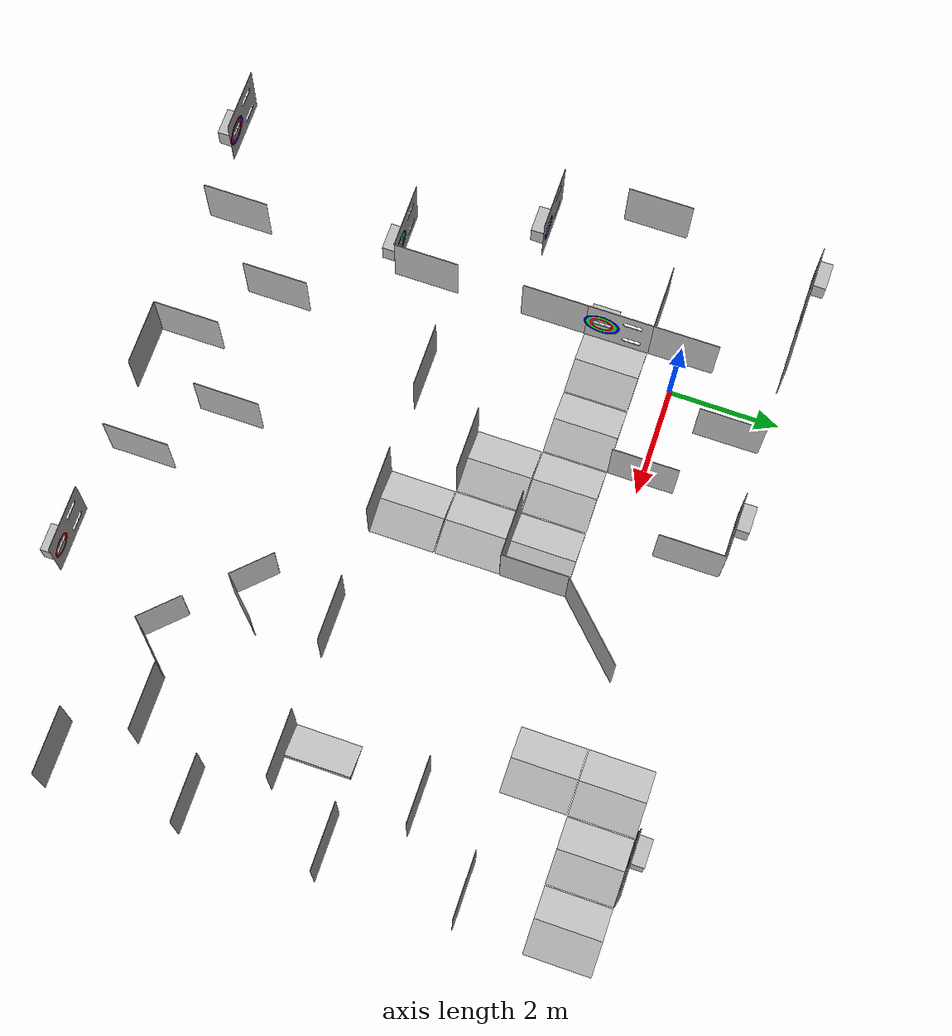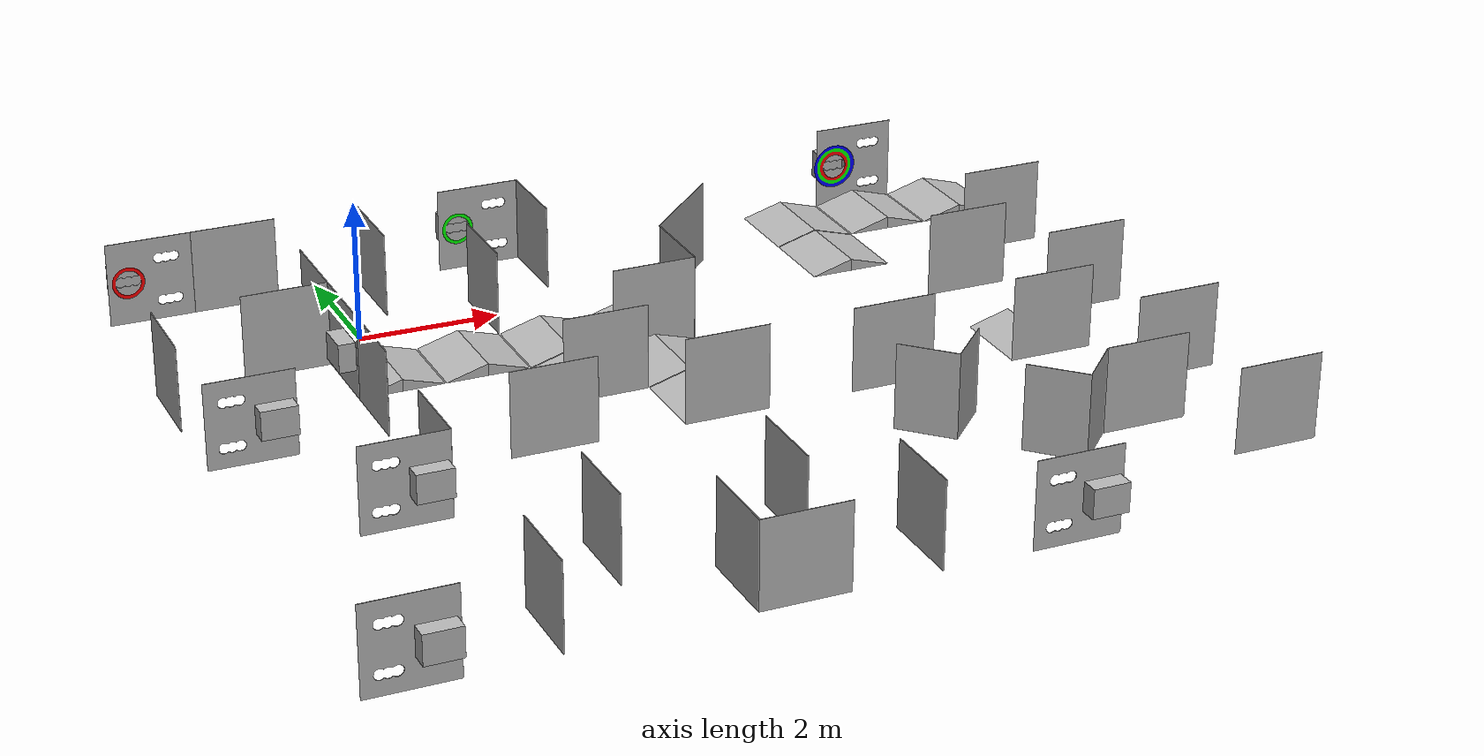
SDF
<sdf version="1.4">
 <world name="default">
  <include><uri>model://sun</uri></include>
  <model name="small_wall_58">
   <static>true</static>
   <link name="small_wall_58_link">
    <pose>9.6 -3.6 0 0 0 0</pose>
    <collision name="small_wall_58_collision">
     <geometry><mesh><uri>file://robocup/walls/small_wall.dae</uri><scale>1 1 1</scale></mesh></geometry>
    </collision>
    <visual name="small_wall_58_visual">
     <cast_shadows>false</cast_shadows>
     <geometry><mesh><uri>file://robocup/walls/small_wall.dae</uri><scale>1 1 1</scale></mesh></geometry>
    </visual>
   </link>
  </model>
  <model name="small_wall_59">
   <static>true</static>
   <link name="small_wall_59_link">
    <pose>8.4 -1.2 0 0 0 -3.14159</pose>
    <collision name="small_wall_59_collision">
     <geometry><mesh><uri>file://robocup/walls/small_wall.dae</uri><scale>1 1 1</scale></mesh></geometry>
    </collision>
    <visual name="small_wall_59_visual">
     <cast_shadows>false</cast_shadows>
     <geometry><mesh><uri>file://robocup/walls/small_wall.dae</uri><scale>1 1 1</scale></mesh></geometry>
    </visual>
   </link>
  </model>
  <model name="small_wall_60">
   <static>true</static>
   <link name="small_wall_60_link">
    <pose>9.6 -1.2 0 0 0 0</pose>
    <collision name="small_wall_60_collision">
     <geometry><mesh><uri>file://robocup/walls/small_wall.dae</uri><scale>1 1 1</scale></mesh></geometry>
    </collision>
    <visual name="small_wall_60_visual">
     <cast_shadows>false</cast_shadows>
     <geometry><mesh><uri>file://robocup/walls/small_wall.dae</uri><scale>1 1 1</scale></mesh></geometry>
    </visual>
   </link>
  </model>
  <model name="half_ramp_14">
   <static>true</static>
   <link name="half_ramp_14_link">
    <pose>8.4 -3.6 0 0 0 -1.5708</pose>
    <collision name="half_ramp_14_collision">
     <geometry><mesh><uri>file://robocup/ramps/half_ramp.dae</uri><scale>1 1 1</scale></mesh></geometry>
    </collision>
    <visual name="half_ramp_14_visual">
     <cast_shadows>false</cast_shadows>
     <geometry><mesh><uri>file://robocup/ramps/half_ramp.dae</uri><scale>1 1 1</scale></mesh></geometry>
    </visual>
   </link>
  </model>
  <model name="small_wall_61">
   <static>true</static>
   <link name="small_wall_61_link">
    <pose>8.4 -4.8 0 0 0 0</pose>
    <collision name="small_wall_61_collision">
     <geometry><mesh><uri>file://robocup/walls/small_wall.dae</uri><scale>1 1 1</scale></mesh></geometry>
    </collision>
    <visual name="small_wall_61_visual">
     <cast_shadows>false</cast_shadows>
     <geometry><mesh><uri>file://robocup/walls/small_wall.dae</uri><scale>1 1 1</scale></mesh></geometry>
    </visual>
   </link>
  </model>
  <model name="small_wall_62">
   <static>true</static>
   <link name="small_wall_62_link">
    <pose>9.6 -4.8 0 0 0 -3.14159</pose>
    <collision name="small_wall_62_collision">
     <geometry><mesh><uri>file://robocup/walls/small_wall.dae</uri><scale>1 1 1</scale></mesh></geometry>
    </collision>
    <visual name="small_wall_62_visual">
     <cast_shadows>false</cast_shadows>
     <geometry><mesh><uri>file://robocup/walls/small_wall.dae</uri><scale>1 1 1</scale></mesh></geometry>
    </visual>
   </link>
  </model>
  <model name="small_wall_63">
   <static>true</static>
   <link name="small_wall_63_link">
    <pose>9.6 -8.4 0 0 0 0</pose>
    <collision name="small_wall_63_collision">
     <geometry><mesh><uri>file://robocup/walls/small_wall.dae</uri><scale>1 1 1</scale></mesh></geometry>
    </collision>
    <visual name="small_wall_63_visual">
     <cast_shadows>false</cast_shadows>
     <geometry><mesh><uri>file://robocup/walls/small_wall.dae</uri><scale>1 1 1</scale></mesh></geometry>
    </visual>
   </link>
  </model>
  <model name="small_wall_triple_holes_1">
   <static>true</static>
   <link name="small_wall_triple_holes_1_link">
    <pose>-2.4 -3.6 0 0 0 0</pose>
    <collision name="small_wall_triple_holes_1_collision">
     <geometry>
      <mesh><uri>file://robocup/walls/small_wall_triple_holes.dae</uri><scale>1 1 1</scale></mesh>
     </geometry>
    </collision>
    <visual name="small_wall_triple_holes_1_visual">
     <cast_shadows>false</cast_shadows>
     <geometry>
      <mesh><uri>file://robocup/walls/small_wall_triple_holes.dae</uri><scale>1 1 1</scale></mesh>
     </geometry>
    </visual>
   </link>
  </model>
  <model name="wall_diag_120_1">
   <static>true</static>
   <link name="wall_diag_120_1_link">
    <pose>4.8 0 0 0 0 0</pose>
    <collision name="wall_diag_120_1_collision">
     <geometry><mesh><uri>file://robocup/walls/wall_diag_120.dae</uri><scale>1 1 1</scale></mesh></geometry>
    </collision>
    <visual name="wall_diag_120_1_visual">
     <cast_shadows>false</cast_shadows>
     <geometry><mesh><uri>file://robocup/walls/wall_diag_120.dae</uri><scale>1 1 1</scale></mesh></geometry>
    </visual>
   </link>
  </model>
  <model name="corner_diag_120_1">
   <static>true</static>
   <link name="corner_diag_120_1_link">
    <pose>6 -6 0 0 0 0</pose>
    <collision name="corner_diag_120_1_collision">
     <geometry><mesh><uri>file://robocup/walls/corner_diag_120.dae</uri><scale>1 1 1</scale></mesh></geometry>
    </collision>
    <visual name="corner_diag_120_1_visual">
     <cast_shadows>false</cast_shadows>
     <geometry><mesh><uri>file://robocup/walls/corner_diag_120.dae</uri><scale>1 1 1</scale></mesh></geometry>
    </visual>
   </link>
  </model>
  <model name="corner_diag_120_2">
   <static>true</static>
   <link name="corner_diag_120_2_link">
    <pose>7.2 -7.2 0 0 0 0</pose>
    <collision name="corner_diag_120_2_collision">
     <geometry><mesh><uri>file://robocup/walls/corner_diag_120.dae</uri><scale>1 1 1</scale></mesh></geometry>
    </collision>
    <visual name="corner_diag_120_2_visual">
     <cast_shadows>false</cast_shadows>
     <geometry><mesh><uri>file://robocup/walls/corner_diag_120.dae</uri><scale>1 1 1</scale></mesh></geometry>
    </visual>
   </link>
  </model>
  <model name="small_wall_triple_holes_2">
   <static>true</static>
   <link name="small_wall_triple_holes_2_link">
    <pose>-2.4 2.4 0 0 0 -3.14159</pose>
    <collision name="small_wall_triple_holes_2_collision">
     <geometry>
      <mesh><uri>file://robocup/walls/small_wall_triple_holes.dae</uri><scale>1 1 1</scale></mesh>
     </geometry>
    </collision>
    <visual name="small_wall_triple_holes_2_visual">
     <cast_shadows>false</cast_shadows>
     <geometry>
      <mesh><uri>file://robocup/walls/small_wall_triple_holes.dae</uri><scale>1 1 1</scale></mesh>
     </geometry>
    </visual>
   </link>
  </model>
  <model name="small_wall_triple_holes_3">
   <static>true</static>
   <link name="small_wall_triple_holes_3_link">
    <pose>8.4 2.4 0 0 0 -3.14159</pose>
    <collision name="small_wall_triple_holes_3_collision">
     <geometry>
      <mesh><uri>file://robocup/walls/small_wall_triple_holes.dae</uri><scale>1 1 1</scale></mesh>
     </geometry>
    </collision>
    <visual name="small_wall_triple_holes_3_visual">
     <cast_shadows>false</cast_shadows>
     <geometry>
      <mesh><uri>file://robocup/walls/small_wall_triple_holes.dae</uri><scale>1 1 1</scale></mesh>
     </geometry>
    </visual>
   </link>
  </model>
  <model name="half_ramp_15">
   <static>true</static>
   <link name="half_ramp_15_link">
    <pose>9.6 1.2 0 0 0 -4.71239</pose>
    <collision name="half_ramp_15_collision">
     <geometry><mesh><uri>file://robocup/ramps/half_ramp.dae</uri><scale>1 1 1</scale></mesh></geometry>
    </collision>
    <visual name="half_ramp_15_visual">
     <cast_shadows>false</cast_shadows>
     <geometry><mesh><uri>file://robocup/ramps/half_ramp.dae</uri><scale>1 1 1</scale></mesh></geometry>
    </visual>
   </link>
  </model>
  <model name="half_ramp_16">
   <static>true</static>
   <link name="half_ramp_16_link">
    <pose>9.6 1.2 0 0 0 -1.5708</pose>
    <collision name="half_ramp_16_collision">
     <geometry><mesh><uri>file://robocup/ramps/half_ramp.dae</uri><scale>1 1 1</scale></mesh></geometry>
    </collision>
    <visual name="half_ramp_16_visual">
     <cast_shadows>false</cast_shadows>
     <geometry><mesh><uri>file://robocup/ramps/half_ramp.dae</uri><scale>1 1 1</scale></mesh></geometry>
    </visual>
   </link>
  </model>
  <model name="half_ramp_17">
   <static>true</static>
   <link name="half_ramp_17_link">
    <pose>7.2 1.2 0 0 0 -1.5708</pose>
    <collision name="half_ramp_17_collision">
     <geometry><mesh><uri>file://robocup/ramps/half_ramp.dae</uri><scale>1 1 1</scale></mesh></geometry>
    </collision>
    <visual name="half_ramp_17_visual">
     <cast_shadows>false</cast_shadows>
     <geometry><mesh><uri>file://robocup/ramps/half_ramp.dae</uri><scale>1 1 1</scale></mesh></geometry>
    </visual>
   </link>
  </model>
  <model name="half_ramp_18">
   <static>true</static>
   <link name="half_ramp_18_link">
    <pose>7.2 1.2 0 0 0 -4.71239</pose>
    <collision name="half_ramp_18_collision">
     <geometry><mesh><uri>file://robocup/ramps/half_ramp.dae</uri><scale>1 1 1</scale></mesh></geometry>
    </collision>
    <visual name="half_ramp_18_visual">
     <cast_shadows>false</cast_shadows>
     <geometry><mesh><uri>file://robocup/ramps/half_ramp.dae</uri><scale>1 1 1</scale></mesh></geometry>
    </visual>
   </link>
  </model>
  <model name="half_ramp_19">
   <static>true</static>
   <link name="half_ramp_19_link">
    <pose>8.4 1.2 0 0 0 -1.5708</pose>
    <collision name="half_ramp_19_collision">
     <geometry><mesh><uri>file://robocup/ramps/half_ramp.dae</uri><scale>1 1 1</scale></mesh></geometry>
    </collision>
    <visual name="half_ramp_19_visual">
     <cast_shadows>false</cast_shadows>
     <geometry><mesh><uri>file://robocup/ramps/half_ramp.dae</uri><scale>1 1 1</scale></mesh></geometry>
    </visual>
   </link>
  </model>
  <model name="half_ramp_20">
   <static>true</static>
   <link name="half_ramp_20_link">
    <pose>8.4 1.2 0 0 0 -4.71239</pose>
    <collision name="half_ramp_20_collision">
     <geometry><mesh><uri>file://robocup/ramps/half_ramp.dae</uri><scale>1 1 1</scale></mesh></geometry>
    </collision>
    <visual name="half_ramp_20_visual">
     <cast_shadows>false</cast_shadows>
     <geometry><mesh><uri>file://robocup/ramps/half_ramp.dae</uri><scale>1 1 1</scale></mesh></geometry>
    </visual>
   </link>
  </model>
  <model name="half_ramp_21">
   <static>true</static>
   <link name="half_ramp_21_link">
    <pose>7.2 0 0 0 0 -4.71239</pose>
    <collision name="half_ramp_21_collision">
     <geometry><mesh><uri>file://robocup/ramps/half_ramp.dae</uri><scale>1 1 1</scale></mesh></geometry>
    </collision>
    <visual name="half_ramp_21_visual">
     <cast_shadows>false</cast_shadows>
     <geometry><mesh><uri>file://robocup/ramps/half_ramp.dae</uri><scale>1 1 1</scale></mesh></geometry>
    </visual>
   </link>
  </model>
  <model name="half_ramp_22">
   <static>true</static>
   <link name="half_ramp_22_link">
    <pose>7.2 0 0 0 0 -1.5708</pose>
    <collision name="half_ramp_22_collision">
     <geometry><mesh><uri>file://robocup/ramps/half_ramp.dae</uri><scale>1 1 1</scale></mesh></geometry>
    </collision>
    <visual name="half_ramp_22_visual">
     <cast_shadows>false</cast_shadows>
     <geometry><mesh><uri>file://robocup/ramps/half_ramp.dae</uri><scale>1 1 1</scale></mesh></geometry>
    </visual>
   </link>
  </model>
  <model name="half_ramp_23">
   <static>true</static>
   <link name="half_ramp_23_link">
    <pose>0 -1.2 0 0 0 -1.5708</pose>
    <collision name="half_ramp_23_collision">
     <geometry><mesh><uri>file://robocup/ramps/half_ramp.dae</uri><scale>1 1 1</scale></mesh></geometry>
    </collision>
    <visual name="half_ramp_23_visual">
     <cast_shadows>false</cast_shadows>
     <geometry><mesh><uri>file://robocup/ramps/half_ramp.dae</uri><scale>1 1 1</scale></mesh></geometry>
    </visual>
   </link>
  </model>
  <model name="half_ramp_24">
   <static>true</static>
   <link name="half_ramp_24_link">
    <pose>0 -1.2 0 0 0 -4.71239</pose>
    <collision name="half_ramp_24_collision">
     <geometry><mesh><uri>file://robocup/ramps/half_ramp.dae</uri><scale>1 1 1</scale></mesh></geometry>
    </collision>
    <visual name="half_ramp_24_visual">
     <cast_shadows>false</cast_shadows>
     <geometry><mesh><uri>file://robocup/ramps/half_ramp.dae</uri><scale>1 1 1</scale></mesh></geometry>
    </visual>
   </link>
  </model>
  <model name="half_ramp_25">
   <static>true</static>
   <link name="half_ramp_25_link">
    <pose>1.2 -1.2 0 0 0 -4.71239</pose>
    <collision name="half_ramp_25_collision">
     <geometry><mesh><uri>file://robocup/ramps/half_ramp.dae</uri><scale>1 1 1</scale></mesh></geometry>
    </collision>
    <visual name="half_ramp_25_visual">
     <cast_shadows>false</cast_shadows>
     <geometry><mesh><uri>file://robocup/ramps/half_ramp.dae</uri><scale>1 1 1</scale></mesh></geometry>
    </visual>
   </link>
  </model>
  <model name="half_ramp_26">
   <static>true</static>
   <link name="half_ramp_26_link">
    <pose>1.2 -1.2 0 0 0 -1.5708</pose>
    <collision name="half_ramp_26_collision">
     <geometry><mesh><uri>file://robocup/ramps/half_ramp.dae</uri><scale>1 1 1</scale></mesh></geometry>
    </collision>
    <visual name="half_ramp_26_visual">
     <cast_shadows>false</cast_shadows>
     <geometry><mesh><uri>file://robocup/ramps/half_ramp.dae</uri><scale>1 1 1</scale></mesh></geometry>
    </visual>
   </link>
  </model>
  <model name="small_wall_64">
   <static>true</static>
   <link name="small_wall_64_link">
    <pose>3.6 -2.4 0 0 0 0</pose>
    <collision name="small_wall_64_collision">
     <geometry><mesh><uri>file://robocup/walls/small_wall.dae</uri><scale>1 1 1</scale></mesh></geometry>
    </collision>
    <visual name="small_wall_64_visual">
     <cast_shadows>false</cast_shadows>
     <geometry><mesh><uri>file://robocup/walls/small_wall.dae</uri><scale>1 1 1</scale></mesh></geometry>
    </visual>
   </link>
  </model>
  <model name="small_wall_65">
   <static>true</static>
   <link name="small_wall_65_link">
    <pose>2.4 -3.6 0 0 0 0</pose>
    <collision name="small_wall_65_collision">
     <geometry><mesh><uri>file://robocup/walls/small_wall.dae</uri><scale>1 1 1</scale></mesh></geometry>
    </collision>
    <visual name="small_wall_65_visual">
     <cast_shadows>false</cast_shadows>
     <geometry><mesh><uri>file://robocup/walls/small_wall.dae</uri><scale>1 1 1</scale></mesh></geometry>
    </visual>
   </link>
  </model>
  <model name="small_wall_66">
   <static>true</static>
   <link name="small_wall_66_link">
    <pose>3.6 -4.8 0 0 0 0</pose>
    <collision name="small_wall_66_collision">
     <geometry><mesh><uri>file://robocup/walls/small_wall.dae</uri><scale>1 1 1</scale></mesh></geometry>
    </collision>
    <visual name="small_wall_66_visual">
     <cast_shadows>false</cast_shadows>
     <geometry><mesh><uri>file://robocup/walls/small_wall.dae</uri><scale>1 1 1</scale></mesh></geometry>
    </visual>
   </link>
  </model>
  <model name="half_ramp_27">
   <static>true</static>
   <link name="half_ramp_27_link">
    <pose>2.4 -1.2 0 0 0 -1.5708</pose>
    <collision name="half_ramp_27_collision">
     <geometry><mesh><uri>file://robocup/ramps/half_ramp.dae</uri><scale>1 1 1</scale></mesh></geometry>
    </collision>
    <visual name="half_ramp_27_visual">
     <cast_shadows>false</cast_shadows>
     <geometry><mesh><uri>file://robocup/ramps/half_ramp.dae</uri><scale>1 1 1</scale></mesh></geometry>
    </visual>
   </link>
  </model>
  <model name="half_ramp_28">
   <static>true</static>
   <link name="half_ramp_28_link">
    <pose>2.4 -1.2 0 0 0 -4.71239</pose>
    <collision name="half_ramp_28_collision">
     <geometry><mesh><uri>file://robocup/ramps/half_ramp.dae</uri><scale>1 1 1</scale></mesh></geometry>
    </collision>
    <visual name="half_ramp_28_visual">
     <cast_shadows>false</cast_shadows>
     <geometry><mesh><uri>file://robocup/ramps/half_ramp.dae</uri><scale>1 1 1</scale></mesh></geometry>
    </visual>
   </link>
  </model>
  <model name="half_ramp_29">
   <static>true</static>
   <link name="half_ramp_29_link">
    <pose>3.6 -1.2 0 0 0 -1.5708</pose>
    <collision name="half_ramp_29_collision">
     <geometry><mesh><uri>file://robocup/ramps/half_ramp.dae</uri><scale>1 1 1</scale></mesh></geometry>
    </collision>
    <visual name="half_ramp_29_visual">
     <cast_shadows>false</cast_shadows>
     <geometry><mesh><uri>file://robocup/ramps/half_ramp.dae</uri><scale>1 1 1</scale></mesh></geometry>
    </visual>
   </link>
  </model>
  <model name="half_ramp_30">
   <static>true</static>
   <link name="half_ramp_30_link">
    <pose>3.6 -1.2 0 0 0 -4.71239</pose>
    <collision name="half_ramp_30_collision">
     <geometry><mesh><uri>file://robocup/ramps/half_ramp.dae</uri><scale>1 1 1</scale></mesh></geometry>
    </collision>
    <visual name="half_ramp_30_visual">
     <cast_shadows>false</cast_shadows>
     <geometry><mesh><uri>file://robocup/ramps/half_ramp.dae</uri><scale>1 1 1</scale></mesh></geometry>
    </visual>
   </link>
  </model>
  <model name="half_ramp_31">
   <static>true</static>
   <link name="half_ramp_31_link">
    <pose>2.4 -2.4 0 0 0 -4.71239</pose>
    <collision name="half_ramp_31_collision">
     <geometry><mesh><uri>file://robocup/ramps/half_ramp.dae</uri><scale>1 1 1</scale></mesh></geometry>
    </collision>
    <visual name="half_ramp_31_visual">
     <cast_shadows>false</cast_shadows>
     <geometry><mesh><uri>file://robocup/ramps/half_ramp.dae</uri><scale>1 1 1</scale></mesh></geometry>
    </visual>
   </link>
  </model>
  <model name="half_ramp_32">
   <static>true</static>
   <link name="half_ramp_32_link">
    <pose>2.4 -2.4 0 0 0 -1.5708</pose>
    <collision name="half_ramp_32_collision">
     <geometry><mesh><uri>file://robocup/ramps/half_ramp.dae</uri><scale>1 1 1</scale></mesh></geometry>
    </collision>
    <visual name="half_ramp_32_visual">
     <cast_shadows>false</cast_shadows>
     <geometry><mesh><uri>file://robocup/ramps/half_ramp.dae</uri><scale>1 1 1</scale></mesh></geometry>
    </visual>
   </link>
  </model>
  <model name="half_ramp_33">
   <static>true</static>
   <link name="half_ramp_33_link">
    <pose>3.6 -2.4 0 0 0 -1.5708</pose>
    <collision name="half_ramp_33_collision">
     <geometry><mesh><uri>file://robocup/ramps/half_ramp.dae</uri><scale>1 1 1</scale></mesh></geometry>
    </collision>
    <visual name="half_ramp_33_visual">
     <cast_shadows>false</cast_shadows>
     <geometry><mesh><uri>file://robocup/ramps/half_ramp.dae</uri><scale>1 1 1</scale></mesh></geometry>
    </visual>
   </link>
  </model>
  <model name="half_ramp_34">
   <static>true</static>
   <link name="half_ramp_34_link">
    <pose>3.6 -2.4 0 0 0 -4.71239</pose>
    <collision name="half_ramp_34_collision">
     <geometry><mesh><uri>file://robocup/ramps/half_ramp.dae</uri><scale>1 1 1</scale></mesh></geometry>
    </collision>
    <visual name="half_ramp_34_visual">
     <cast_shadows>false</cast_shadows>
     <geometry><mesh><uri>file://robocup/ramps/half_ramp.dae</uri><scale>1 1 1</scale></mesh></geometry>
    </visual>
   </link>
  </model>
  <model name="half_ramp_35">
   <static>true</static>
   <link name="half_ramp_35_link">
    <pose>3.6 -3.6 0 0 0 -1.5708</pose>
    <collision name="half_ramp_35_collision">
     <geometry><mesh><uri>file://robocup/ramps/half_ramp.dae</uri><scale>1 1 1</scale></mesh></geometry>
    </collision>
    <visual name="half_ramp_35_visual">
     <cast_shadows>false</cast_shadows>
     <geometry><mesh><uri>file://robocup/ramps/half_ramp.dae</uri><scale>1 1 1</scale></mesh></geometry>
    </visual>
   </link>
  </model>
  <model name="half_ramp_36">
   <static>true</static>
   <link name="half_ramp_36_link">
    <pose>3.6 -3.6 0 0 0 -4.71239</pose>
    <collision name="half_ramp_36_collision">
     <geometry><mesh><uri>file://robocup/ramps/half_ramp.dae</uri><scale>1 1 1</scale></mesh></geometry>
    </collision>
    <visual name="half_ramp_36_visual">
     <cast_shadows>false</cast_shadows>
     <geometry><mesh><uri>file://robocup/ramps/half_ramp.dae</uri><scale>1 1 1</scale></mesh></geometry>
    </visual>
   </link>
  </model>
  <model name="small_wall_triple_holes_4">
   <static>true</static>
   <link name="small_wall_triple_holes_4_link">
    <pose>-2.4 -9.6 0 0 0 0</pose>
    <collision name="small_wall_triple_holes_4_collision">
     <geometry>
      <mesh><uri>file://robocup/walls/small_wall_triple_holes.dae</uri><scale>1 1 1</scale></mesh>
     </geometry>
    </collision>
    <visual name="small_wall_triple_holes_4_visual">
     <cast_shadows>false</cast_shadows>
     <geometry>
      <mesh><uri>file://robocup/walls/small_wall_triple_holes.dae</uri><scale>1 1 1</scale></mesh>
     </geometry>
    </visual>
   </link>
  </model>
  <model name="small_wall_67">
   <static>true</static>
   <link name="small_wall_67_link">
    <pose>0 1.2 0 0 0 -1.5708</pose>
    <collision name="small_wall_67_collision">
     <geometry><mesh><uri>file://robocup/walls/small_wall.dae</uri><scale>1 1 1</scale></mesh></geometry>
    </collision>
    <visual name="small_wall_67_visual">
     <cast_shadows>false</cast_shadows>
     <geometry><mesh><uri>file://robocup/walls/small_wall.dae</uri><scale>1 1 1</scale></mesh></geometry>
    </visual>
   </link>
  </model>
  <model name="small_wall_68">
   <static>true</static>
   <link name="small_wall_68_link">
    <pose>2.4 1.2 0 0 0 -1.5708</pose>
    <collision name="small_wall_68_collision">
     <geometry><mesh><uri>file://robocup/walls/small_wall.dae</uri><scale>1 1 1</scale></mesh></geometry>
    </collision>
    <visual name="small_wall_68_visual">
     <cast_shadows>false</cast_shadows>
     <geometry><mesh><uri>file://robocup/walls/small_wall.dae</uri><scale>1 1 1</scale></mesh></geometry>
    </visual>
   </link>
  </model>
  <model name="small_wall_69">
   <static>true</static>
   <link name="small_wall_69_link">
    <pose>-1.2 0 0 0 0 -1.5708</pose>
    <collision name="small_wall_69_collision">
     <geometry><mesh><uri>file://robocup/walls/small_wall.dae</uri><scale>1 1 1</scale></mesh></geometry>
    </collision>
    <visual name="small_wall_69_visual">
     <cast_shadows>false</cast_shadows>
     <geometry><mesh><uri>file://robocup/walls/small_wall.dae</uri><scale>1 1 1</scale></mesh></geometry>
    </visual>
   </link>
  </model>
  <model name="small_wall_70">
   <static>true</static>
   <link name="small_wall_70_link">
    <pose>1.2 -3.6 0 0 0 -3.14159</pose>
    <collision name="small_wall_70_collision">
     <geometry><mesh><uri>file://robocup/walls/small_wall.dae</uri><scale>1 1 1</scale></mesh></geometry>
    </collision>
    <visual name="small_wall_70_visual">
     <cast_shadows>false</cast_shadows>
     <geometry><mesh><uri>file://robocup/walls/small_wall.dae</uri><scale>1 1 1</scale></mesh></geometry>
    </visual>
   </link>
  </model>
  <model name="small_wall_71">
   <static>true</static>
   <link name="small_wall_71_link">
    <pose>0 -8.4 0 0 0 -4.71239</pose>
    <collision name="small_wall_71_collision">
     <geometry><mesh><uri>file://robocup/walls/small_wall.dae</uri><scale>1 1 1</scale></mesh></geometry>
    </collision>
    <visual name="small_wall_71_visual">
     <cast_shadows>false</cast_shadows>
     <geometry><mesh><uri>file://robocup/walls/small_wall.dae</uri><scale>1 1 1</scale></mesh></geometry>
    </visual>
   </link>
  </model>
  <model name="small_wall_72">
   <static>true</static>
   <link name="small_wall_72_link">
    <pose>2.4 -8.4 0 0 0 -4.71239</pose>
    <collision name="small_wall_72_collision">
     <geometry><mesh><uri>file://robocup/walls/small_wall.dae</uri><scale>1 1 1</scale></mesh></geometry>
    </collision>
    <visual name="small_wall_72_visual">
     <cast_shadows>false</cast_shadows>
     <geometry><mesh><uri>file://robocup/walls/small_wall.dae</uri><scale>1 1 1</scale></mesh></geometry>
    </visual>
   </link>
  </model>
  <model name="small_wall_73">
   <static>true</static>
   <link name="small_wall_73_link">
    <pose>2.4 -7.2 0 0 0 -1.5708</pose>
    <collision name="small_wall_73_collision">
     <geometry><mesh><uri>file://robocup/walls/small_wall.dae</uri><scale>1 1 1</scale></mesh></geometry>
    </collision>
    <visual name="small_wall_73_visual">
     <cast_shadows>false</cast_shadows>
     <geometry><mesh><uri>file://robocup/walls/small_wall.dae</uri><scale>1 1 1</scale></mesh></geometry>
    </visual>
   </link>
  </model>
  <model name="small_wall_74">
   <static>true</static>
   <link name="small_wall_74_link">
    <pose>4.8 -8.4 0 0 0 -4.71239</pose>
    <collision name="small_wall_74_collision">
     <geometry><mesh><uri>file://robocup/walls/small_wall.dae</uri><scale>1 1 1</scale></mesh></geometry>
    </collision>
    <visual name="small_wall_74_visual">
     <cast_shadows>false</cast_shadows>
     <geometry><mesh><uri>file://robocup/walls/small_wall.dae</uri><scale>1 1 1</scale></mesh></geometry>
    </visual>
   </link>
  </model>
  <model name="small_wall_75">
   <static>true</static>
   <link name="small_wall_75_link">
    <pose>8.4 -7.2 0 0 0 0</pose>
    <collision name="small_wall_75_collision">
     <geometry><mesh><uri>file://robocup/walls/small_wall.dae</uri><scale>1 1 1</scale></mesh></geometry>
    </collision>
    <visual name="small_wall_75_visual">
     <cast_shadows>false</cast_shadows>
     <geometry><mesh><uri>file://robocup/walls/small_wall.dae</uri><scale>1 1 1</scale></mesh></geometry>
    </visual>
   </link>
  </model>
  <model name="small_wall_76">
   <static>true</static>
   <link name="small_wall_76_link">
    <pose>-1.2 -1.2 0 0 0 0</pose>
    <collision name="small_wall_76_collision">
     <geometry><mesh><uri>file://robocup/walls/small_wall.dae</uri><scale>1 1 1</scale></mesh></geometry>
    </collision>
    <visual name="small_wall_76_visual">
     <cast_shadows>false</cast_shadows>
     <geometry><mesh><uri>file://robocup/walls/small_wall.dae</uri><scale>1 1 1</scale></mesh></geometry>
    </visual>
   </link>
  </model>
  <model name="small_wall_77">
   <static>true</static>
   <link name="small_wall_77_link">
    <pose>-1.2 -4.8 0 0 0 -1.5708</pose>
    <collision name="small_wall_77_collision">
     <geometry><mesh><uri>file://robocup/walls/small_wall.dae</uri><scale>1 1 1</scale></mesh></geometry>
    </collision>
    <visual name="small_wall_77_visual">
     <cast_shadows>false</cast_shadows>
     <geometry><mesh><uri>file://robocup/walls/small_wall.dae</uri><scale>1 1 1</scale></mesh></geometry>
    </visual>
   </link>
  </model>
  <model name="small_wall_78">
   <static>true</static>
   <link name="small_wall_78_link">
    <pose>0 -2.4 0 0 0 -4.71239</pose>
    <collision name="small_wall_78_collision">
     <geometry><mesh><uri>file://robocup/walls/small_wall.dae</uri><scale>1 1 1</scale></mesh></geometry>
    </collision>
    <visual name="small_wall_78_visual">
     <cast_shadows>false</cast_shadows>
     <geometry><mesh><uri>file://robocup/walls/small_wall.dae</uri><scale>1 1 1</scale></mesh></geometry>
    </visual>
   </link>
  </model>
  <model name="small_wall_triple_holes_5">
   <static>true</static>
   <link name="small_wall_triple_holes_5_link">
    <pose>-1.2 -6 0 0 0 0</pose>
    <collision name="small_wall_triple_holes_5_collision">
     <geometry>
      <mesh><uri>file://robocup/walls/small_wall_triple_holes.dae</uri><scale>1 1 1</scale></mesh>
     </geometry>
    </collision>
    <visual name="small_wall_triple_holes_5_visual">
     <cast_shadows>false</cast_shadows>
     <geometry>
      <mesh><uri>file://robocup/walls/small_wall_triple_holes.dae</uri><scale>1 1 1</scale></mesh>
     </geometry>
    </visual>
   </link>
  </model>
  <model name="small_wall_triple_holes_6">
   <static>true</static>
   <link name="small_wall_triple_holes_6_link">
    <pose>2.4 2.4 0 0 0 -3.14159</pose>
    <collision name="small_wall_triple_holes_6_collision">
     <geometry>
      <mesh><uri>file://robocup/walls/small_wall_triple_holes.dae</uri><scale>1 1 1</scale></mesh>
     </geometry>
    </collision>
    <visual name="small_wall_triple_holes_6_visual">
     <cast_shadows>false</cast_shadows>
     <geometry>
      <mesh><uri>file://robocup/walls/small_wall_triple_holes.dae</uri><scale>1 1 1</scale></mesh>
     </geometry>
    </visual>
   </link>
  </model>
  <model name="small_wall_qr_1">
   <static>true</static>
   <link name="small_wall_qr_1_link">
    <pose>1.2 -7.2 0 0 0 -4.71239</pose>
    <collision name="small_wall_qr_1_collision">
     <geometry><mesh><uri>file://robocup/walls/small_wall_qr.dae</uri><scale>1 1 1</scale></mesh></geometry>
    </collision>
    <visual name="small_wall_qr_1_visual">
     <cast_shadows>false</cast_shadows>
     <geometry><mesh><uri>file://robocup/walls/small_wall_qr.dae</uri><scale>1 1 1</scale></mesh></geometry>
    </visual>
   </link>
  </model>
  <model name="small_wall_qr_2">
   <static>true</static>
   <link name="small_wall_qr_2_link">
    <pose>6 -4.8 0 0 0 0</pose>
    <collision name="small_wall_qr_2_collision">
     <geometry><mesh><uri>file://robocup/walls/small_wall_qr.dae</uri><scale>1 1 1</scale></mesh></geometry>
    </collision>
    <visual name="small_wall_qr_2_visual">
     <cast_shadows>false</cast_shadows>
     <geometry><mesh><uri>file://robocup/walls/small_wall_qr.dae</uri><scale>1 1 1</scale></mesh></geometry>
    </visual>
   </link>
  </model>
  <model name="small_wall_qr_3">
   <static>true</static>
   <link name="small_wall_qr_3_link">
    <pose>1.2 0 0 0 0 -1.5708</pose>
    <collision name="small_wall_qr_3_collision">
     <geometry><mesh><uri>file://robocup/walls/small_wall_qr.dae</uri><scale>1 1 1</scale></mesh></geometry>
    </collision>
    <visual name="small_wall_qr_3_visual">
     <cast_shadows>false</cast_shadows>
     <geometry><mesh><uri>file://robocup/walls/small_wall_qr.dae</uri><scale>1 1 1</scale></mesh></geometry>
    </visual>
   </link>
  </model>
  <model name="small_wall_qr_4">
   <static>true</static>
   <link name="small_wall_qr_4_link">
    <pose>-1.2 2.4 0 0 0 -3.14159</pose>
    <collision name="small_wall_qr_4_collision">
     <geometry><mesh><uri>file://robocup/walls/small_wall_qr.dae</uri><scale>1 1 1</scale></mesh></geometry>
    </collision>
    <visual name="small_wall_qr_4_visual">
     <cast_shadows>false</cast_shadows>
     <geometry><mesh><uri>file://robocup/walls/small_wall_qr.dae</uri><scale>1 1 1</scale></mesh></geometry>
    </visual>
   </link>
  </model>
  <model name="small_wall_qr_5">
   <static>true</static>
   <link name="small_wall_qr_5_link">
    <pose>-3.6 -1.2 0 0 0 -1.5708</pose>
    <collision name="small_wall_qr_5_collision">
     <geometry><mesh><uri>file://robocup/walls/small_wall_qr.dae</uri><scale>1 1 1</scale></mesh></geometry>
    </collision>
    <visual name="small_wall_qr_5_visual">
     <cast_shadows>false</cast_shadows>
     <geometry><mesh><uri>file://robocup/walls/small_wall_qr.dae</uri><scale>1 1 1</scale></mesh></geometry>
    </visual>
   </link>
  </model>
  <model name="small_wall_qr_6">
   <static>true</static>
   <link name="small_wall_qr_6_link">
    <pose>2.4 -9.6 0 0 0 0</pose>
    <collision name="small_wall_qr_6_collision">
     <geometry><mesh><uri>file://robocup/walls/small_wall_qr.dae</uri><scale>1 1 1</scale></mesh></geometry>
    </collision>
    <visual name="small_wall_qr_6_visual">
     <cast_shadows>false</cast_shadows>
     <geometry><mesh><uri>file://robocup/walls/small_wall_qr.dae</uri><scale>1 1 1</scale></mesh></geometry>
    </visual>
   </link>
  </model>
  <model name="small_wall_triple_holes_7">
   <static>true</static>
   <link name="small_wall_triple_holes_7_link">
    <pose>6 -9.6 0 0 0 0</pose>
    <collision name="small_wall_triple_holes_7_collision">
     <geometry>
      <mesh><uri>file://robocup/walls/small_wall_triple_holes.dae</uri><scale>1 1 1</scale></mesh>
     </geometry>
    </collision>
    <visual name="small_wall_triple_holes_7_visual">
     <cast_shadows>false</cast_shadows>
     <geometry>
      <mesh><uri>file://robocup/walls/small_wall_triple_holes.dae</uri><scale>1 1 1</scale></mesh>
     </geometry>
    </visual>
   </link>
  </model>
  <model name="small_wall_triple_holes_8">
   <static>true</static>
   <link name="small_wall_triple_holes_8_link">
    <pose>-1.2 -1.2 0 0 0 -1.5708</pose>
    <collision name="small_wall_triple_holes_8_collision">
     <geometry>
      <mesh><uri>file://robocup/walls/small_wall_triple_holes.dae</uri><scale>1 1 1</scale></mesh>
     </geometry>
    </collision>
    <visual name="small_wall_triple_holes_8_visual">
     <cast_shadows>false</cast_shadows>
     <geometry>
      <mesh><uri>file://robocup/walls/small_wall_triple_holes.dae</uri><scale>1 1 1</scale></mesh>
     </geometry>
    </visual>
   </link>
  </model>
  <model name="small_wall_qr_7">
   <static>true</static>
   <link name="small_wall_qr_7_link">
    <pose>4.8 -1.2 0 0 0 -4.71239</pose>
    <collision name="small_wall_qr_7_collision">
     <geometry><mesh><uri>file://robocup/walls/small_wall_qr.dae</uri><scale>1 1 1</scale></mesh></geometry>
    </collision>
    <visual name="small_wall_qr_7_visual">
     <cast_shadows>false</cast_shadows>
     <geometry><mesh><uri>file://robocup/walls/small_wall_qr.dae</uri><scale>1 1 1</scale></mesh></geometry>
    </visual>
   </link>
  </model>
  <model name="victim_with_box_t_1">
   <static>true</static>
   <link name="victim_with_box_t_1_link">
    <pose>-2.7 2.4 0.6 0 0 -3.14159</pose>
    <collision name="victim_with_box_t_1_collision">
     <geometry><mesh><uri>file://robocup/victims/victim_with_box_t.dae</uri><scale>1 1 1</scale></mesh></geometry>
    </collision>
    <visual name="victim_with_box_t_1_visual">
     <cast_shadows>false</cast_shadows>
     <geometry><mesh><uri>file://robocup/victims/victim_with_box_t.dae</uri><scale>1 1 1</scale></mesh></geometry>
    </visual>
   </link>
  </model>
  <model name="victim_with_box_c_1">
   <static>true</static>
   <link name="victim_with_box_c_1_link">
    <pose>2.1 2.4 0.6 0 0 -3.14159</pose>
    <collision name="victim_with_box_c_1_collision">
     <geometry><mesh><uri>file://robocup/victims/victim_with_box_c.dae</uri><scale>1 1 1</scale></mesh></geometry>
    </collision>
    <visual name="victim_with_box_c_1_visual">
     <cast_shadows>false</cast_shadows>
     <geometry><mesh><uri>file://robocup/victims/victim_with_box_c.dae</uri><scale>1 1 1</scale></mesh></geometry>
    </visual>
   </link>
  </model>
  <model name="victim_with_box_tsc_1">
   <static>true</static>
   <link name="victim_with_box_tsc_1_link">
    <pose>8.1 2.4 0.6 0 0 -3.14159</pose>
    <collision name="victim_with_box_tsc_1_collision">
     <geometry>
      <mesh><uri>file://robocup/victims/victim_with_box_tsc.dae</uri><scale>1 1 1</scale></mesh>
     </geometry>
    </collision>
    <visual name="victim_with_box_tsc_1_visual">
     <cast_shadows>false</cast_shadows>
     <geometry>
      <mesh><uri>file://robocup/victims/victim_with_box_tsc.dae</uri><scale>1 1 1</scale></mesh>
     </geometry>
    </visual>
   </link>
  </model>
  <model name="victim_with_box_s_1">
   <static>true</static>
   <link name="victim_with_box_s_1_link">
    <pose>-2.1 -3.6 0.6 0 0 0</pose>
    <collision name="victim_with_box_s_1_collision">
     <geometry><mesh><uri>file://robocup/victims/victim_with_box_s.dae</uri><scale>1 1 1</scale></mesh></geometry>
    </collision>
    <visual name="victim_with_box_s_1_visual">
     <cast_shadows>false</cast_shadows>
     <geometry><mesh><uri>file://robocup/victims/victim_with_box_s.dae</uri><scale>1 1 1</scale></mesh></geometry>
    </visual>
   </link>
  </model>
  <model name="victim_with_box_sc_1">
   <static>true</static>
   <link name="victim_with_box_sc_1_link">
    <pose>-0.9 -6 0.6 0 0 0</pose>
    <collision name="victim_with_box_sc_1_collision">
     <geometry><mesh><uri>file://robocup/victims/victim_with_box_sc.dae</uri><scale>1 1 1</scale></mesh></geometry>
    </collision>
    <visual name="victim_with_box_sc_1_visual">
     <cast_shadows>false</cast_shadows>
     <geometry><mesh><uri>file://robocup/victims/victim_with_box_sc.dae</uri><scale>1 1 1</scale></mesh></geometry>
    </visual>
   </link>
  </model>
  <model name="victim_with_box_ts_1">
   <static>true</static>
   <link name="victim_with_box_ts_1_link">
    <pose>-2.1 -9.6 0.6 0 0 0</pose>
    <collision name="victim_with_box_ts_1_collision">
     <geometry><mesh><uri>file://robocup/victims/victim_with_box_ts.dae</uri><scale>1 1 1</scale></mesh></geometry>
    </collision>
    <visual name="victim_with_box_ts_1_visual">
     <cast_shadows>false</cast_shadows>
     <geometry><mesh><uri>file://robocup/victims/victim_with_box_ts.dae</uri><scale>1 1 1</scale></mesh></geometry>
    </visual>
   </link>
  </model>
  <model name="victim_with_box_t_2">
   <static>true</static>
   <link name="victim_with_box_t_2_link">
    <pose>6.3 -9.6 0.6 0 0 0</pose>
    <collision name="victim_with_box_t_2_collision">
     <geometry><mesh><uri>file://robocup/victims/victim_with_box_t.dae</uri><scale>1 1 1</scale></mesh></geometry>
    </collision>
    <visual name="victim_with_box_t_2_visual">
     <cast_shadows>false</cast_shadows>
     <geometry><mesh><uri>file://robocup/victims/victim_with_box_t.dae</uri><scale>1 1 1</scale></mesh></geometry>
    </visual>
   </link>
  </model>
  <model name="victim_with_box_tsc_2">
   <static>true</static>
   <link name="victim_with_box_tsc_2_link">
    <pose>-1.2 -1.5 0.6 0 0 -1.5708</pose>
    <collision name="victim_with_box_tsc_2_collision">
     <geometry>
      <mesh><uri>file://robocup/victims/victim_with_box_tsc.dae</uri><scale>1 1 1</scale></mesh>
     </geometry>
    </collision>
    <visual name="victim_with_box_tsc_2_visual">
     <cast_shadows>false</cast_shadows>
     <geometry>
      <mesh><uri>file://robocup/victims/victim_with_box_tsc.dae</uri><scale>1 1 1</scale></mesh>
     </geometry>
    </visual>
   </link>
  </model>
 </world>
</sdf>
